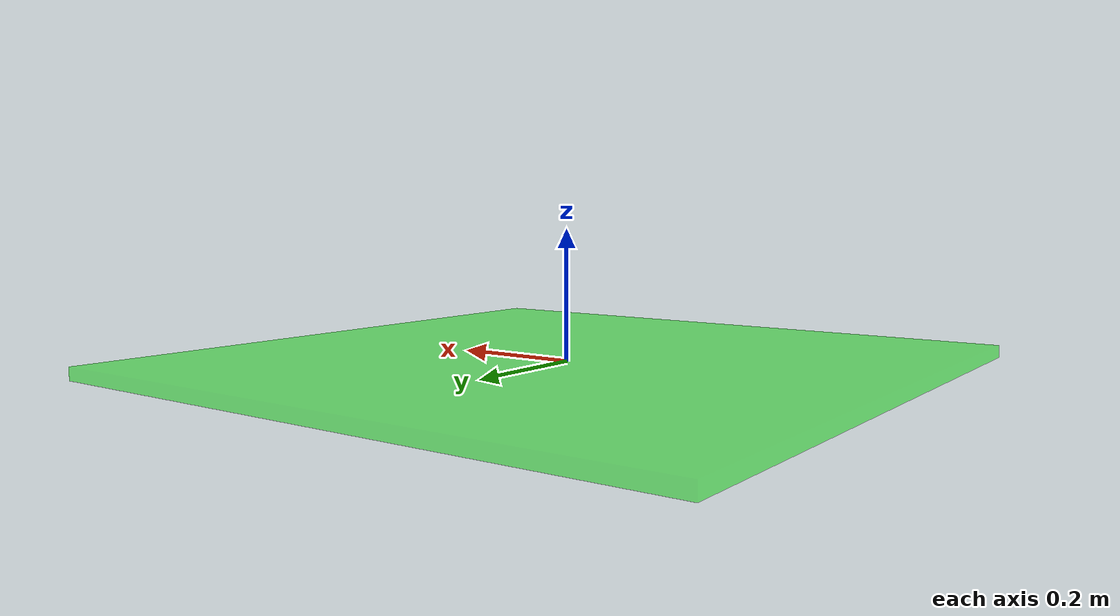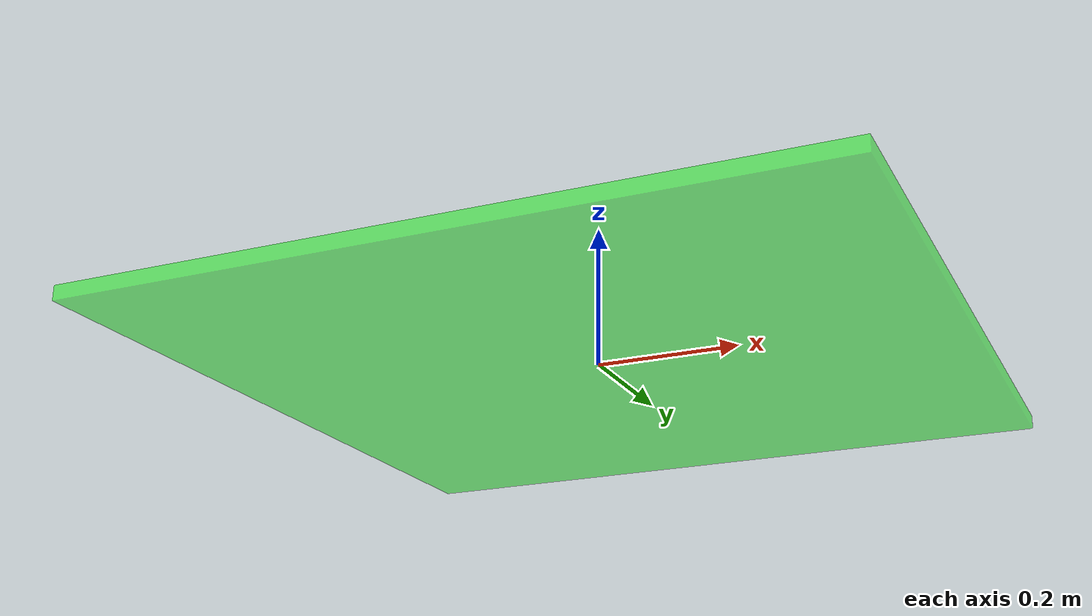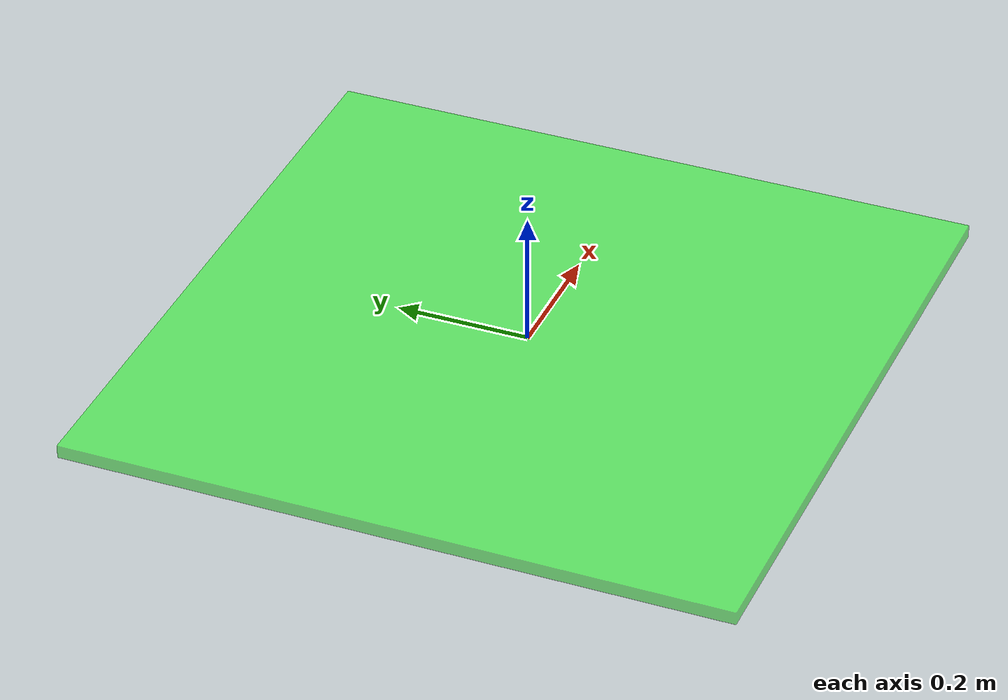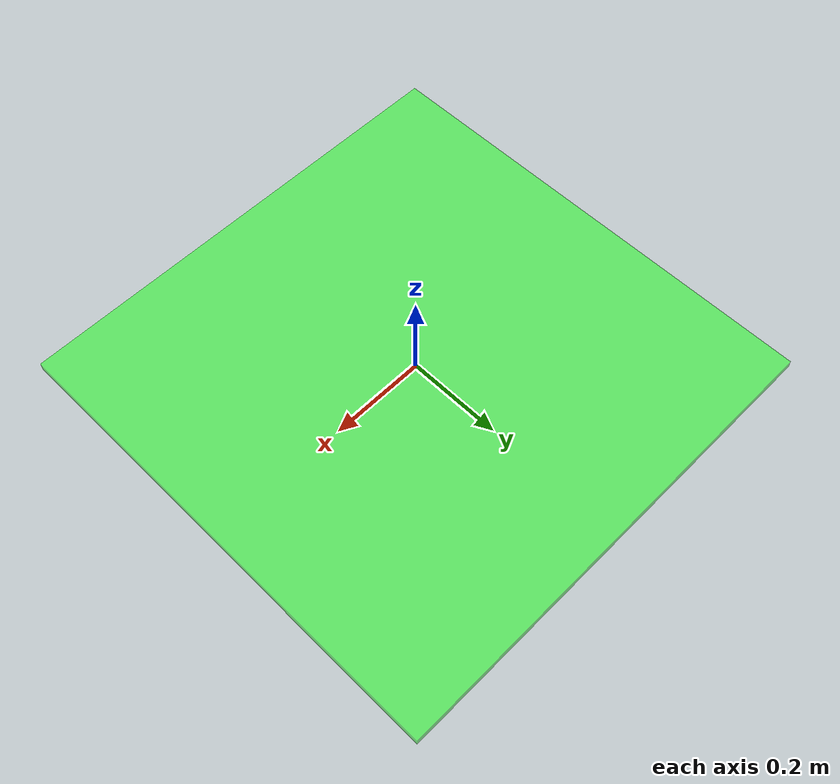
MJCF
<mujoco model="toy">
  <default>
    <default class="visual">
      <geom group="1" type="mesh" contype="0" conaffinity="0"/>
    </default>
  </default>
  <worldbody>
    <body>
      <body name="object">
        <geom type="box" size="0.5 0.5 0.01" class="visual" rgba="0 1 0 0.5"/>
      </body>
    </body>
  </worldbody>
</mujoco>
